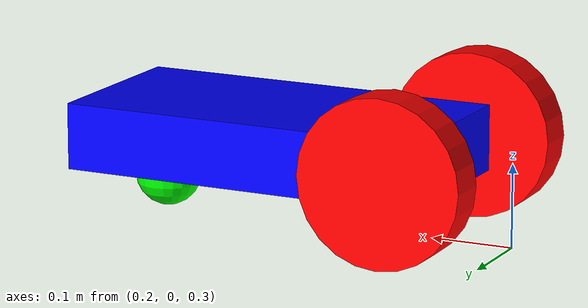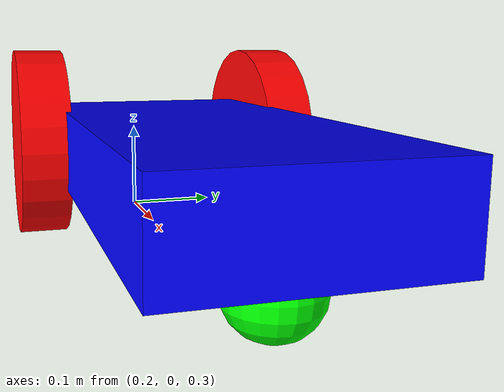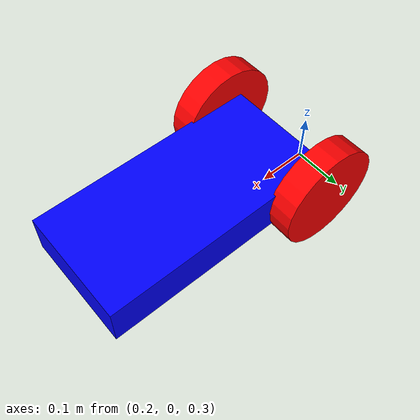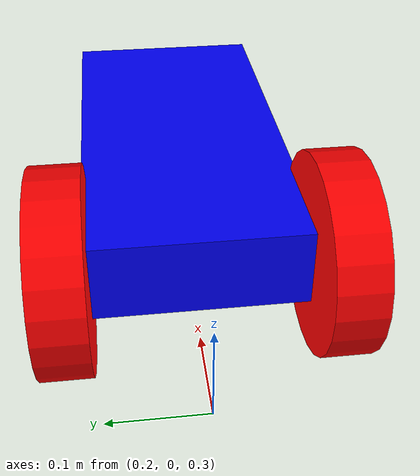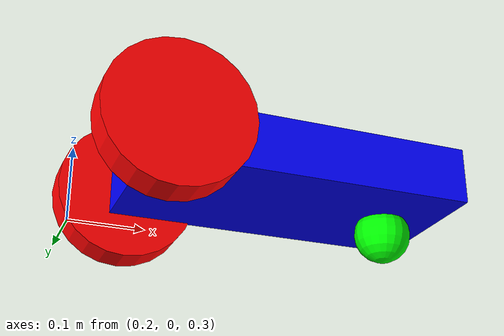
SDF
<?xml version="1.0" ?>
<sdf version="1.8">
    <model name='generic_robot' canonical_link='chassis'>
        <!--chassis-->
        <link name='chassis'>
            <pose relative_to='__model__'>0.5 0 0.4 0 0 0</pose>
            <inertial> <!--inertial properties of the link mass, inertia matix-->
                <mass>1.14395</mass>
                <inertia>
                    <ixx>0.095329</ixx>
                    <ixy>0</ixy>
                    <ixz>0</ixz>
                    <iyy>0.381317</iyy>
                    <iyz>0</iyz>
                    <izz>0.476646</izz>
                </inertia>
            </inertial>
            <visual name='visual'>
                <geometry>
                    <box>
                        <size>0.45 0.22 0.08</size>
                    </box>
                </geometry>
                <!--Color of the link-->
                <material>
                    <ambient>0.0 0.0 1.0 1</ambient>
                    <diffuse>0.0 0.0 1.0 1</diffuse>
                    <specular>0.0 0.0 1.0 1</specular>
                </material>
            </visual>
            <collision name='collision'>
                <geometry>
                    <box>
                        <size>0.45 0.22 0.08</size>
                    </box>
                </geometry>
            </collision>
        </link>

        <!--Left wheel-->
        <link name='left_wheel'>
            <pose relative_to="chassis">-0.2 0.13 0 -1.5707 0 0</pose> <!--angles are in radian-->
            <inertial>
                <mass>1</mass>
                <inertia>
                    <ixx>0.043333</ixx>
                    <ixy>0</ixy>
                    <ixz>0</ixz>
                    <iyy>0.043333</iyy>
                    <iyz>0</iyz>
                    <izz>0.08</izz>
                </inertia>
            </inertial>
            <visual name='visual'>
                <geometry>
                    <cylinder>
                        <radius>0.1</radius>
                        <length>0.05</length>
                    </cylinder>
                </geometry>
                <material>
                    <ambient>1.0 0.0 0.0 1</ambient>
                    <diffuse>1.0 0.0 0.0 1</diffuse>
                    <specular>1.0 0.0 0.0 1</specular>
                </material>
            </visual>
            <collision name='collision'>
                <geometry>
                    <cylinder>
                        <radius>0.1</radius>
                        <length>0.05</length>
                    </cylinder>
                </geometry>
            </collision>
        </link>

        <!--The same as left wheel but with different position-->
        <link name='right_wheel'>
            <pose relative_to="chassis">-0.2 -0.13 0 -1.5707 0 0</pose> <!--angles are in radian-->
            <inertial>
                <mass>1</mass>
                <inertia>
                    <ixx>0.043333</ixx>
                    <ixy>0</ixy>
                    <ixz>0</ixz>
                    <iyy>0.043333</iyy>
                    <iyz>0</iyz>
                    <izz>0.08</izz>
                </inertia>
            </inertial>
            <visual name='visual'>
                <geometry>
                    <cylinder>
                        <radius>0.1</radius>
                        <length>0.05</length>
                    </cylinder>
                </geometry>
                <material>
                    <ambient>1.0 0.0 0.0 1</ambient>
                    <diffuse>1.0 0.0 0.0 1</diffuse>
                    <specular>1.0 0.0 0.0 1</specular>
                </material>
            </visual>
            <collision name='collision'>
                <geometry>
                    <cylinder>
                        <radius>0.1</radius>
                        <length>0.05</length>
                    </cylinder>
                </geometry>
            </collision>
        </link>

        <frame name="caster_frame" attached_to='chassis'>
            <pose relative_to="chassis">0.15 0 -0.06 0 0 0</pose>
        </frame>

        <link name='caster'>
            <pose relative_to='caster_frame'>0 0 0 0 0 0</pose>
            <inertial>
                <mass>1</mass>
                <inertia>
                    <ixx>0.016</ixx>
                    <ixy>0</ixy>
                    <ixz>0</ixz>
                    <iyy>0.016</iyy>
                    <iyz>0</iyz>
                    <izz>0.016</izz>
                </inertia>
            </inertial>
            <visual name='visual'>
                <geometry>
                    <sphere>
                        <radius>0.04</radius>
                    </sphere>
                </geometry>
                <material>
                    <ambient>0.0 1 0.0 1</ambient>
                    <diffuse>0.0 1 0.0 1</diffuse>
                    <specular>0.0 1 0.0 1</specular>
                </material>
            </visual>
            <collision name='collision'>
                <geometry>
                    <sphere>
                        <radius>0.04</radius>
                    </sphere>
                </geometry>
            </collision>
        </link>

        <!--left wheel joint-->
        <joint name='left_wheel_joint' type='revolute'>
            <pose relative_to='left_wheel'/>
            <parent>chassis</parent>
            <child>left_wheel</child>
            <axis>
                <xyz expressed_in='__model__'>0 1 0</xyz> <!--can be descired to any frame or even arbitrary frames-->
                <limit>
                    <lower>-1.79769e+308</lower>    <!--negative infinity-->
                    <upper>1.79769e+308</upper>     <!--positive infinity-->
                </limit>
            </axis>
        </joint>

        <!--right wheel joint-->
        <joint name='right_wheel_joint' type='revolute'>
            <pose relative_to='right_wheel'/>
            <parent>chassis</parent>
            <child>right_wheel</child>
            <axis>
                <xyz expressed_in='__model__'>0 1 0</xyz>
                <limit>
                    <lower>-1.79769e+308</lower>    <!--negative infinity-->
                    <upper>1.79769e+308</upper>     <!--positive infinity-->
                </limit>
            </axis>
        </joint>

        <!--caster wheel joint--> <!--pose defult value is the child-->
        <joint name='caster_wheel' type='ball'>
            <parent>chassis</parent>
            <child>caster</child>
        </joint>

        <plugin
            filename="gz-sim-diff-drive-system"
            name="gz::sim::systems::DiffDrive">
            <left_joint>left_wheel_joint</left_joint>
            <right_joint>right_wheel_joint</right_joint>
            <wheel_separation>0.26</wheel_separation>
            <wheel_radius>0.1</wheel_radius>
            <odom_publish_frequency>10</odom_publish_frequency>
            <topic>cmd_vel</topic>
        </plugin>
        <!-- Moving Based on Key Press (WASD)-->
        <plugin filename="gz-sim-triggered-publisher-system"
                name="gz::sim::systems::TriggeredPublisher">
            <input type="gz.msgs.Int32" topic="/keyboard/keypress">
                <match field="data">87</match>
            </input>
            <output type="gz.msgs.Twist" topic="/cmd_vel">
                linear: {x: 0.5}, angular: {z: 0.0}
            </output>
        </plugin>
        <plugin filename="gz-sim-triggered-publisher-system"
                name="gz::sim::systems::TriggeredPublisher">
            <input type="gz.msgs.Int32" topic="/keyboard/keypress">
                <match field="data">83</match>
            </input>
            <output type="gz.msgs.Twist" topic="/cmd_vel">
                linear: {x: -0.5}, angular: {z: 0.0}
            </output>
        </plugin>
        <plugin filename="gz-sim-triggered-publisher-system"
                name="gz::sim::systems::TriggeredPublisher">
            <input type="gz.msgs.Int32" topic="/keyboard/keypress">
                <match field="data">65</match>
            </input>
            <output type="gz.msgs.Twist" topic="/cmd_vel">
                linear: {x: 0.0}, angular: {z: 0.5}
            </output>
        </plugin>
        <plugin filename="gz-sim-triggered-publisher-system"
                name="gz::sim::systems::TriggeredPublisher">
            <input type="gz.msgs.Int32" topic="/keyboard/keypress">
                <match field="data">68</match>
            </input>
            <output type="gz.msgs.Twist" topic="/cmd_vel">
                linear: {x: 0.0}, angular: {z: -0.5}
            </output>
        </plugin>
    </model>
</sdf>
